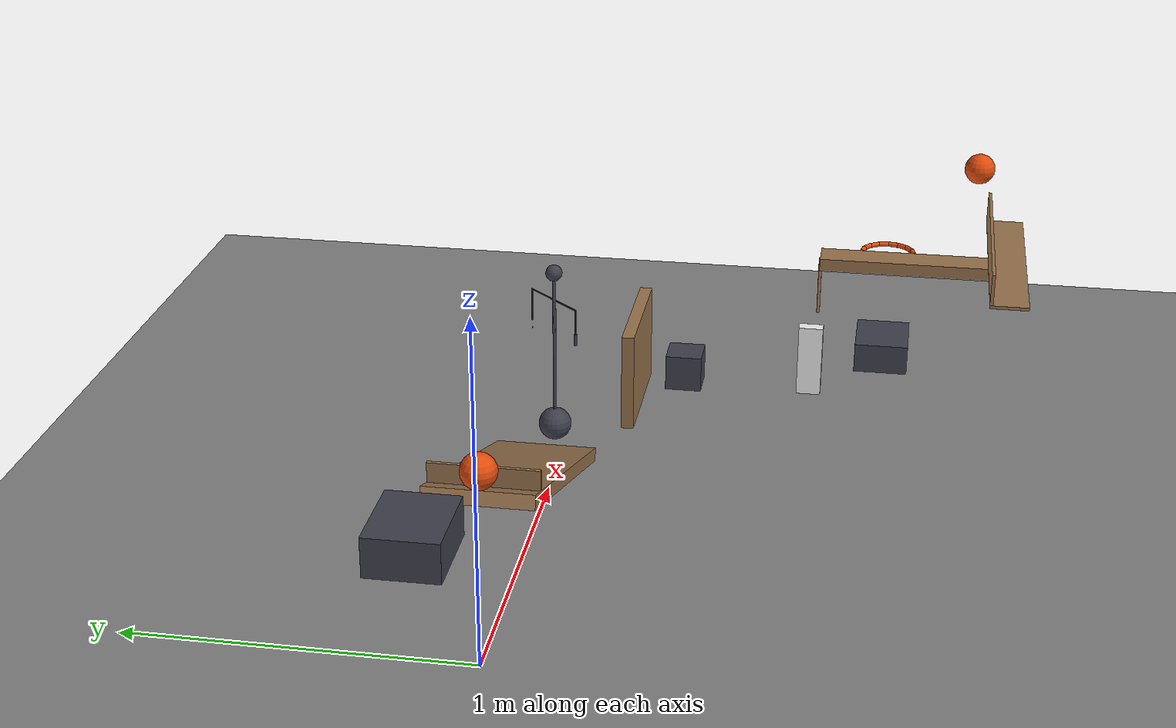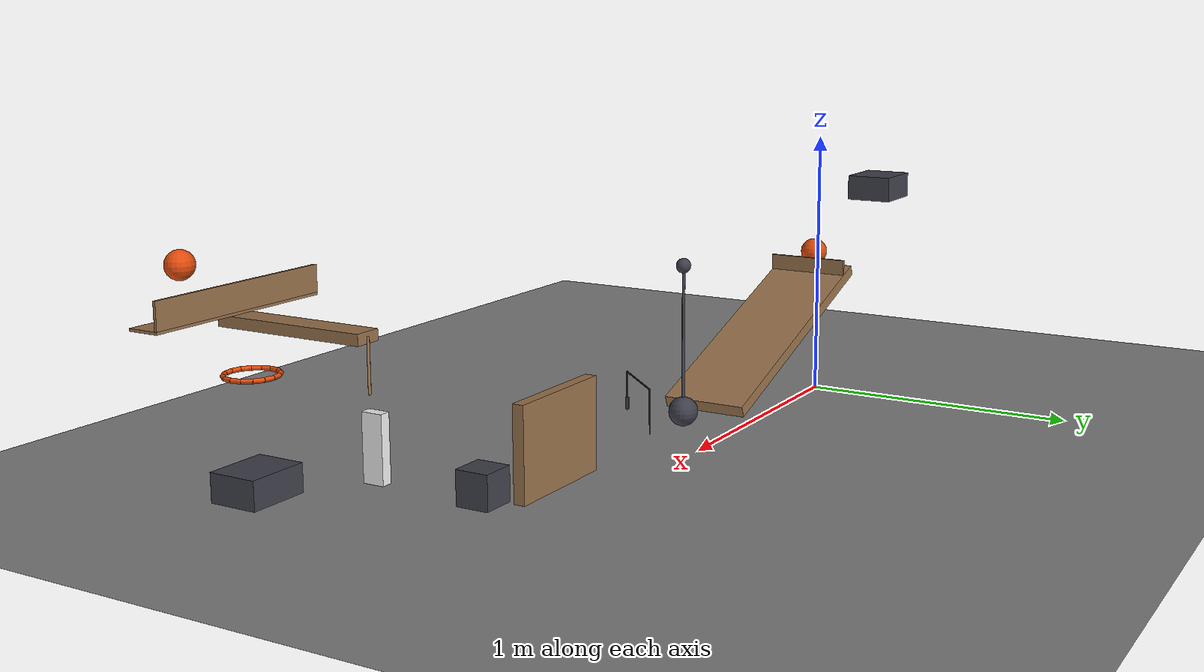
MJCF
<mujoco model="latched_chain_revision">
  <compiler angle="radian"/>
  <option timestep="0.002"/>
  <worldbody>
    <geom name="floor" type="plane" size="6 6 0.1" friction="0.68 0.005 0.002"/>
    <body name="ramp1">
      <geom name="ramp1" type="box" pos="0.490153 0 0.32101" size="0.5 0.15 0.02" euler="0 0.349066 0" friction="0.68 0.005 0.002" solref="0.01 1" rgba="0.6 0.45 0.3 1"/>
    </body>
    <body name="cart1" pos="-34.8178 0 -93.2295">
      <joint name="cart1_axial_guide" type="hinge" pos="0 0 0" axis="0 1 0" limited="true" range="0 0.0174533" stiffness="180000" springref="0.00200001" damping="2000"/>
      <geom name="cart1" type="box" pos="34.202 0 93.9693" size="0.11 0.09 0.05" mass="0.5" friction="0.68 0.005 0.002" solref="0.01 1" rgba="0.25 0.25 0.3 1"/>
    </body>
    <body name="ball1" pos="0.0442484 0 0.557798">
      <freejoint/>
      <geom name="ball1" type="sphere" pos="0 0 0" size="0.05" mass="0.2" condim="6" friction="0.68 0.005 0.002" solref="0.01 1" rgba="0.9 0.3 0.05 1"/>
    </body>
    <body name="ball1 retainer" pos="0.106307 0 0.485644">
      <joint name="retainer_hinge" type="hinge" pos="0 0 0" axis="0 1 0" limited="true" range="0 1.91986" damping="0.04"/>
      <geom name="ball1 retainer" type="box" pos="-0.005 0 0.0285" size="0.005 0.15 0.0285" mass="0.005" friction="0.68 0.005 0.0001" solref="0.01 1" rgba="0.6 0.45 0.3 1"/>
    </body>
    <body name="pendulum1" pos="1.11 0 0.67">
      <joint name="pendulum1_hinge" type="hinge" pos="0 0 0" axis="0 1 0" limited="true" range="-0.698132 0" damping="0.04" armature="0.1"/>
      <geom name="pendulum1" type="sphere" pos="0 0 -0.5" size="0.05" mass="0.01" friction="0.68 0.005 0.0001" solref="0.01 1" rgba="0.25 0.25 0.3 1"/>
      <geom name="pendulum rod" type="capsule" size="0.005" fromto="0 0 0 0 0 -0.45" mass="0.01" friction="0.68 0.005 0.0001" solref="0.01 1" rgba="0.25 0.25 0.3 1"/>
      <geom name="pendulum pivot weight" type="sphere" pos="0 0 0" size="0.025" mass="0.33" friction="0.68 0.005 0.0001" solref="0.01 1" rgba="0.25 0.25 0.3 1"/>
    </body>
    <body name="door1" pos="1.40722 -0.181865 0.18">
      <joint name="door1_hinge" type="hinge" pos="0 0 0" axis="0 0 1" limited="true" range="-0.174533 1.0472" stiffness="12" springref="-0.174533" damping="0.04"/>
      <geom name="door1" type="box" pos="0.21 0 0" size="0.21 0.02 0.16" mass="0.45" friction="0.68 0.005 0.0001" solref="0.01 1" rgba="0.6 0.45 0.3 1"/>
    </body>
    <body name="door latch" pos="1.53454 0.170865 0.28">
      <joint name="door_latch_hinge" type="hinge" pos="0 0 0" axis="0 0 1" limited="true" range="0 1.5708" damping="0.04" armature="0.02"/>
      <geom name="door latch" type="box" pos="0.102 0.00075 0" size="0.002 0.00025 0.03" mass="0.005" friction="0.68 0.005 0.0001" solref="0.01 1" rgba="0.25 0.25 0.3 1"/>
      <geom name="door latch trigger" type="box" pos="-0.05316 -0.170865 0.006978" size="0.002 0.005 0.02" mass="0.005" friction="0.68 0.005 0.0001" solref="0.01 1" rgba="0.25 0.25 0.3 1"/>
      <geom name="latch trigger riser" type="capsule" size="0.002" fromto="-0.05316 -0.170865 0.006978 -0.05316 -0.170865 0.11" mass="0.003" friction="0.68 0.005 0.0001" solref="0.01 1" rgba="0.25 0.25 0.3 1"/>
      <geom name="latch overhead link" type="capsule" size="0.002" fromto="-0.05316 -0.170865 0.11 0.104 0.00075 0.11" mass="0.003" friction="0.68 0.005 0.0001" solref="0.01 1" rgba="0.25 0.25 0.3 1"/>
      <geom name="latch catch riser" type="capsule" size="0.002" fromto="0.104 0.00075 0.11 0.104 0.00075 0" mass="0.003" friction="0.68 0.005 0.0001" solref="0.01 1" rgba="0.25 0.25 0.3 1"/>
    </body>
    <body name="block1" pos="1.82314 -0.320123 0.06">
      <freejoint/>
      <geom name="block1" type="box" pos="0 0 0" size="0.06 0.06 0.06" mass="0.35" friction="0.68 0.005 0.002" solref="0.01 1" rgba="0.25 0.25 0.3 1"/>
    </body>
    <body name="domino1" pos="1.82314 -0.740123 0.12">
      <freejoint/>
      <geom name="domino1" type="box" pos="0 0 0" size="0.02 0.04 0.12" mass="0.25" friction="0.68 0.005 0.002" solref="0.01 1" rgba="0.95 0.95 0.95 1"/>
    </body>
    <body name="lever1" pos="1.82314 -1.05922 0.482394">
      <joint name="lever1_hinge" type="hinge" pos="0 0 0" axis="1 0 0" limited="true" range="-1.39626 -0.610865" stiffness="0.505" springref="-1.39626" damping="0.04"/>
      <geom name="lever1" type="box" pos="0 0 0" size="0.05 0.3 0.02" mass="0.485" friction="0.68 0.005 0.0001" solref="0.01 1" rgba="0.6 0.45 0.3 1"/>
      <geom name="lever strike finger" type="capsule" size="0.005" fromto="0 0.3 0 0 0.3 -0.185945" mass="0.005" friction="0.68 0.005 0.0001" solref="0.01 1" rgba="0.6 0.45 0.3 1"/>
      <geom name="lever tray base" type="box" pos="0 -0.3 0.025" size="0.375 0.06 0.005" mass="0.005" friction="0.68 0.005 0.0001" solref="0.01 1" rgba="0.6 0.45 0.3 1"/>
      <geom name="lever tray inner wall" type="box" pos="0 -0.244 0.08" size="0.375 0.005 0.05" mass="0.005" friction="0.68 0.005 0.0001" solref="0.01 1" rgba="0.6 0.45 0.3 1"/>
    </body>
    <body name="ball2" pos="2.12314 -1.25907 0.72">
      <freejoint/>
      <geom name="ball2" type="sphere" pos="0 0 0" size="0.05" mass="0.2" condim="6" friction="0.68 0.005 0.002" solref="0.01 1" rgba="0.9 0.3 0.05 1"/>
    </body>
    <body name="ring1">
      <geom name="ring1_00" type="capsule" size="0.008" fromto="2.21114 -0.974215 0.4 2.20444 -0.940539 0.4" friction="0.68 0.005 0.0001" solref="0.01 1" rgba="0.9 0.3 0.05 1"/>
      <geom name="ring1_01" type="capsule" size="0.008" fromto="2.20444 -0.940539 0.4 2.18536 -0.91199 0.4" friction="0.68 0.005 0.0001" solref="0.01 1" rgba="0.9 0.3 0.05 1"/>
      <geom name="ring1_02" type="capsule" size="0.008" fromto="2.18536 -0.91199 0.4 2.15681 -0.892914 0.4" friction="0.68 0.005 0.0001" solref="0.01 1" rgba="0.9 0.3 0.05 1"/>
      <geom name="ring1_03" type="capsule" size="0.008" fromto="2.15681 -0.892914 0.4 2.12314 -0.886215 0.4" friction="0.68 0.005 0.0001" solref="0.01 1" rgba="0.9 0.3 0.05 1"/>
      <geom name="ring1_04" type="capsule" size="0.008" fromto="2.12314 -0.886215 0.4 2.08946 -0.892914 0.4" friction="0.68 0.005 0.0001" solref="0.01 1" rgba="0.9 0.3 0.05 1"/>
      <geom name="ring1_05" type="capsule" size="0.008" fromto="2.08946 -0.892914 0.4 2.06091 -0.91199 0.4" friction="0.68 0.005 0.0001" solref="0.01 1" rgba="0.9 0.3 0.05 1"/>
      <geom name="ring1_06" type="capsule" size="0.008" fromto="2.06091 -0.91199 0.4 2.04183 -0.940539 0.4" friction="0.68 0.005 0.0001" solref="0.01 1" rgba="0.9 0.3 0.05 1"/>
      <geom name="ring1_07" type="capsule" size="0.008" fromto="2.04183 -0.940539 0.4 2.03514 -0.974215 0.4" friction="0.68 0.005 0.0001" solref="0.01 1" rgba="0.9 0.3 0.05 1"/>
      <geom name="ring1_08" type="capsule" size="0.008" fromto="2.03514 -0.974215 0.4 2.04183 -1.00789 0.4" friction="0.68 0.005 0.0001" solref="0.01 1" rgba="0.9 0.3 0.05 1"/>
      <geom name="ring1_09" type="capsule" size="0.008" fromto="2.04183 -1.00789 0.4 2.06091 -1.03644 0.4" friction="0.68 0.005 0.0001" solref="0.01 1" rgba="0.9 0.3 0.05 1"/>
      <geom name="ring1_10" type="capsule" size="0.008" fromto="2.06091 -1.03644 0.4 2.08946 -1.05552 0.4" friction="0.68 0.005 0.0001" solref="0.01 1" rgba="0.9 0.3 0.05 1"/>
      <geom name="ring1_11" type="capsule" size="0.008" fromto="2.08946 -1.05552 0.4 2.12314 -1.06222 0.4" friction="0.68 0.005 0.0001" solref="0.01 1" rgba="0.9 0.3 0.05 1"/>
      <geom name="ring1_12" type="capsule" size="0.008" fromto="2.12314 -1.06222 0.4 2.15681 -1.05552 0.4" friction="0.68 0.005 0.0001" solref="0.01 1" rgba="0.9 0.3 0.05 1"/>
      <geom name="ring1_13" type="capsule" size="0.008" fromto="2.15681 -1.05552 0.4 2.18536 -1.03644 0.4" friction="0.68 0.005 0.0001" solref="0.01 1" rgba="0.9 0.3 0.05 1"/>
      <geom name="ring1_14" type="capsule" size="0.008" fromto="2.18536 -1.03644 0.4 2.20444 -1.00789 0.4" friction="0.68 0.005 0.0001" solref="0.01 1" rgba="0.9 0.3 0.05 1"/>
      <geom name="ring1_15" type="capsule" size="0.008" fromto="2.20444 -1.00789 0.4 2.21114 -0.974215 0.4" friction="0.68 0.005 0.0001" solref="0.01 1" rgba="0.9 0.3 0.05 1"/>
    </body>
    <body name="cart2" pos="2.12314 99.0258 0.05">
      <joint name="cart2_axial_guide" type="hinge" pos="0 0 0" axis="0 0 1" limited="true" range="-0.010472 0.010472" damping="2000"/>
      <geom name="cart2" type="box" pos="0 -100 0" size="0.11 0.09 0.05" mass="0.5" friction="0.68 0.005 0.002" solref="0.01 1" rgba="0.25 0.25 0.3 1"/>
    </body>
  </worldbody>
  <keyframe>
    <key name="start" qpos="0 0.0442484 0 0.557798 1 0 0 0 0 0 1.0472 0 1.82314 -0.320123 0.06 1 0 0 0 1.82314 -0.740123 0.12 1 0 0 0 -0.610865 2.12314 -1.25907 0.72 1 0 0 0 0" qvel="0 0 0 0 0 0 0 0 0 0 0 0 0 0 0 0 0 0 0 0 0 0 0 0 0 0 0 0 0 0 0"/>
  </keyframe>
</mujoco>
